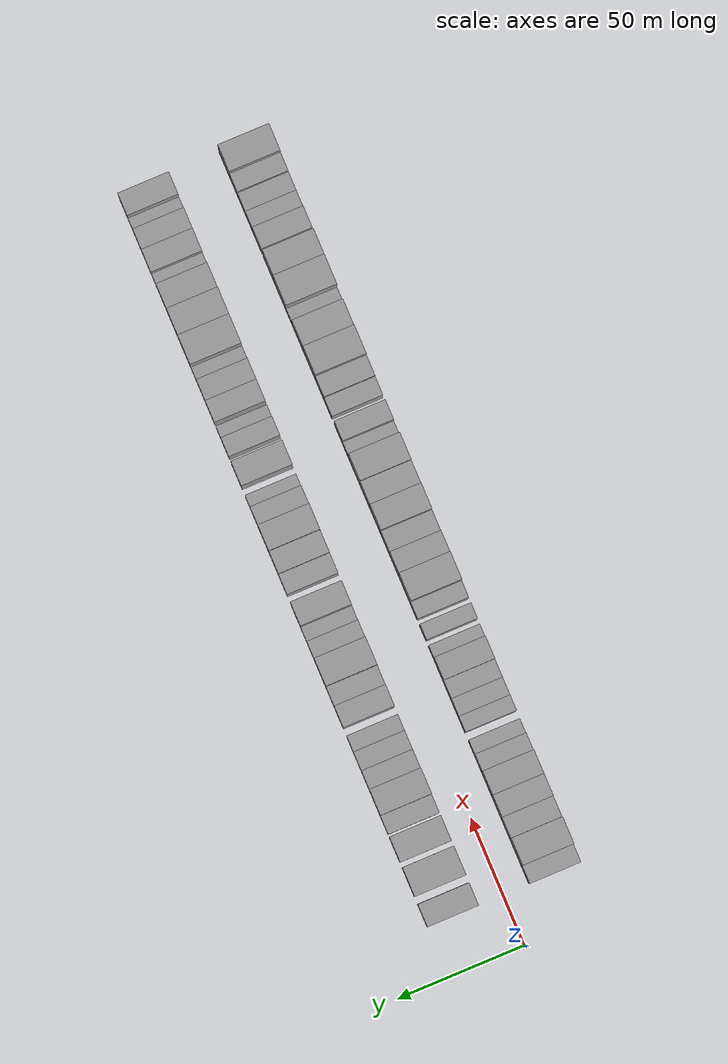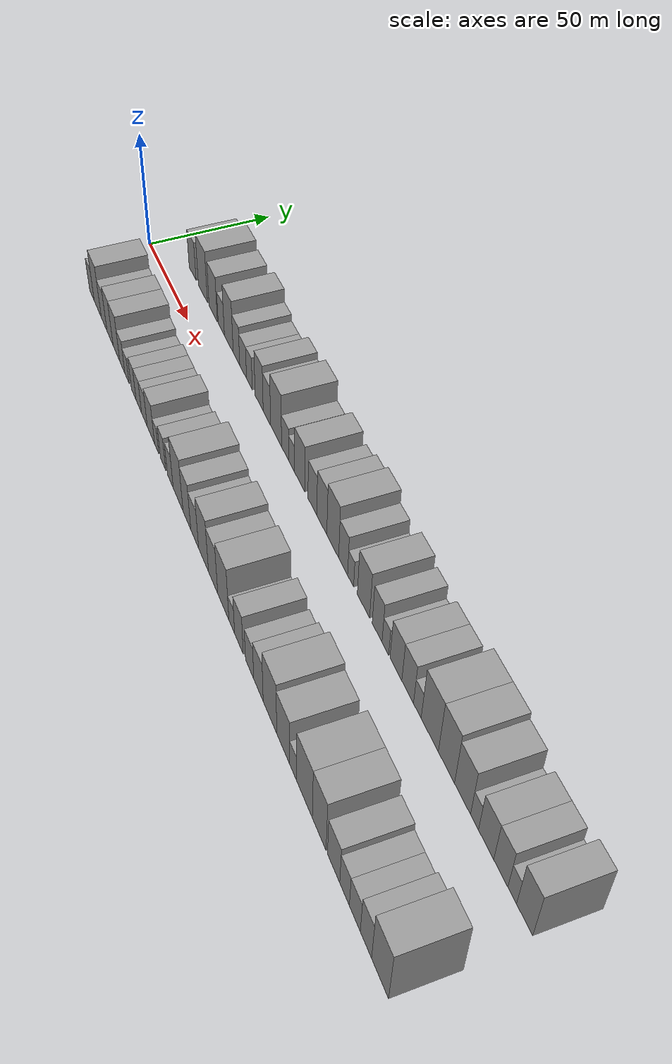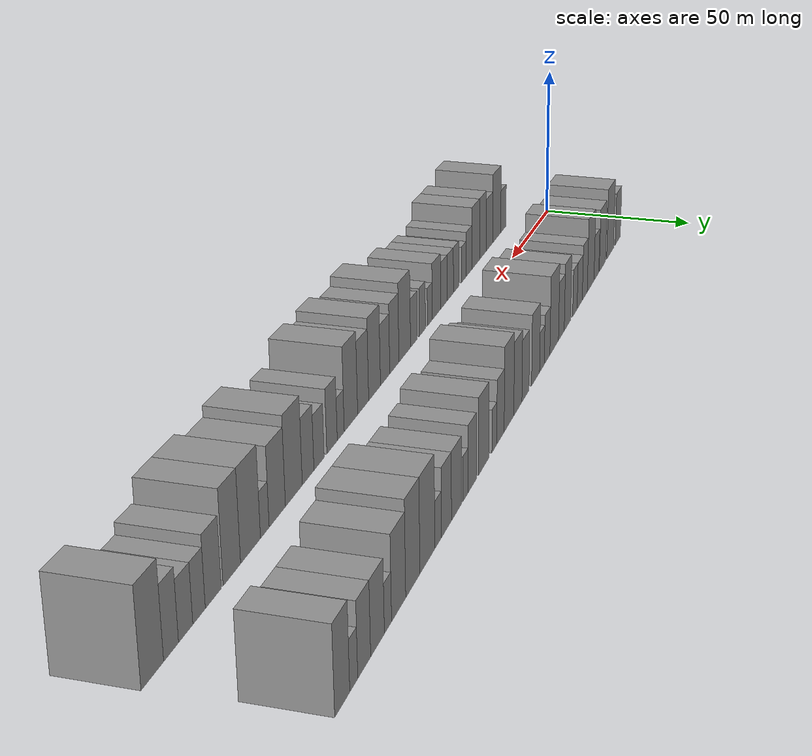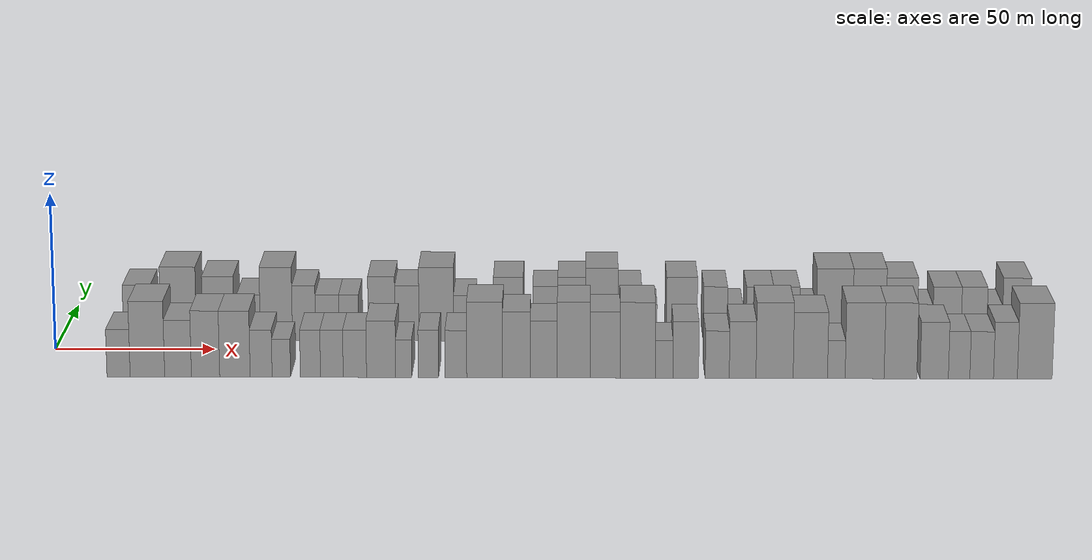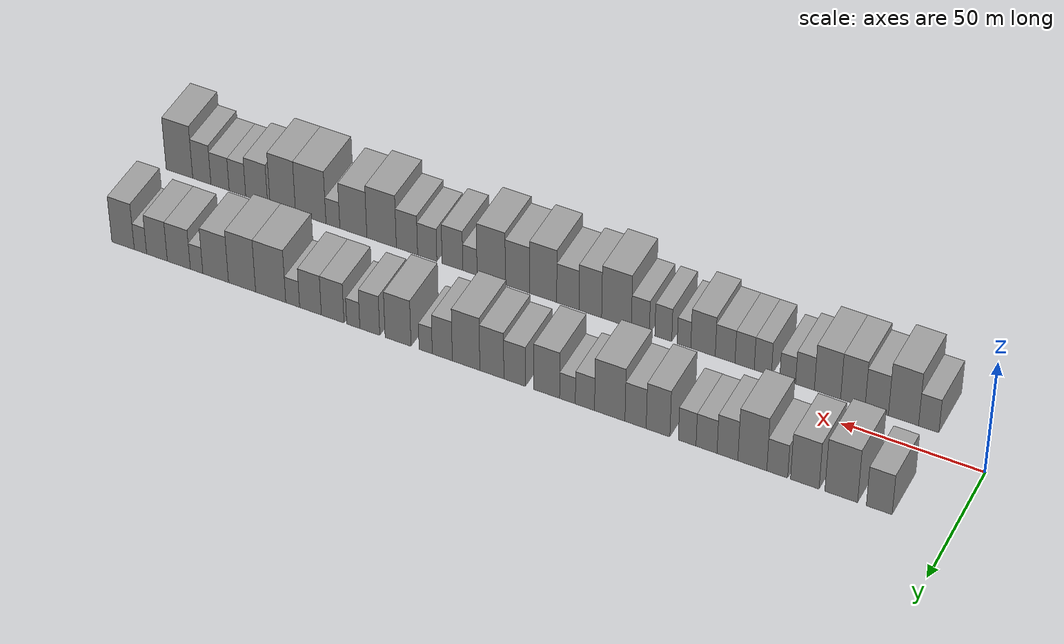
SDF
<sdf version="1.6">
 <world name="default">
  <scene>
   <sky><clouds><speed>12</speed></clouds></sky>
   <ambient>0.4 0.4 0.4 1</ambient>
   <background>0.7 0.7 0.7 1</background>
   <shadows>1</shadows>
  </scene>
  <gravity>0 0 -9.8066</gravity>
  <magnetic_field>6e-06 2.3e-05 -4.2e-05</magnetic_field>
  <physics default="0" name="default_physics" type="ode">
   <ode>
    <solver>
     <type>quick</type>
     <iters>10</iters>
     <sor>1.0</sor>
     <use_dynamic_moi_rescaling>0</use_dynamic_moi_rescaling>
    </solver>
    <constraints>
     <cfm>0</cfm>
     <erp>0.2</erp>
     <contact_max_correcting_vel>100</contact_max_correcting_vel>
     <contact_surface_layer>0.001</contact_surface_layer>
    </constraints>
   </ode>
   <max_step_size>0.004</max_step_size>
   <real_time_factor>1</real_time_factor>
   <real_time_update_rate>250</real_time_update_rate>
  </physics>
  <light name="sun" type="directional">
   <pose>0 0 10 0 0 0</pose>
   <diffuse>0.8 0.8 0.8 1</diffuse>
   <specular>0.2 0.2 0.2 1</specular>
   <attenuation>
    <range>1000</range>
    <constant>0.9</constant>
    <linear>0.01</linear>
    <quadratic>0.001</quadratic>
   </attenuation>
   <direction>-0.5 0.1 -0.9</direction>
  </light>
  <model name="building_1">
   <static>1</static>
   <pose>24.4231 20.0000 0 0.000000 0.000000 1.570796</pose>
   <link name="link">
    <pose>0 0 9.00 0 0 0</pose>
    <collision name="collision"><geometry><box><size>20.0000 8.8463 18.0000</size></box></geometry></collision>
    <visual name="visual">
     <cast_shadows>0</cast_shadows>
     <geometry><box><size>20.0000 8.8463 18.0000</size></box></geometry>
     <material>
      <script>
       <uri>model://grey_wall/materials/scripts</uri>
       <uri>model://grey_wall/materials/textures</uri>
       <name>vrc/grey_wall</name>
      </script>
     </material>
    </visual>
   </link>
  </model>
  <model name="building_2">
   <static>1</static>
   <pose>37.5085 20.0000 0 0.000000 0.000000 1.570796</pose>
   <link name="link">
    <pose>0 0 12.00 0 0 0</pose>
    <collision name="collision"><geometry><box><size>20.0000 11.3244 24.0000</size></box></geometry></collision>
    <visual name="visual">
     <cast_shadows>0</cast_shadows>
     <geometry><box><size>20.0000 11.3244 24.0000</size></box></geometry>
     <material>
      <script>
       <uri>model://grey_wall/materials/scripts</uri>
       <uri>model://grey_wall/materials/textures</uri>
       <name>vrc/grey_wall</name>
      </script>
     </material>
    </visual>
   </link>
  </model>
  <model name="building_3">
   <static>1</static>
   <pose>50.1353 20.0000 0 0.000000 0.000000 1.570796</pose>
   <link name="link">
    <pose>0 0 10.50 0 0 0</pose>
    <collision name="collision"><geometry><box><size>20.0000 9.9292 21.0000</size></box></geometry></collision>
    <visual name="visual">
     <cast_shadows>0</cast_shadows>
     <geometry><box><size>20.0000 9.9292 21.0000</size></box></geometry>
     <material>
      <script>
       <uri>model://grey_wall/materials/scripts</uri>
       <uri>model://grey_wall/materials/textures</uri>
       <name>vrc/grey_wall</name>
      </script>
     </material>
    </visual>
   </link>
  </model>
  <model name="building_4">
   <static>1</static>
   <pose>59.7442 20.0000 0 0.000000 0.000000 1.570796</pose>
   <link name="link">
    <pose>0 0 7.50 0 0 0</pose>
    <collision name="collision"><geometry><box><size>20.0000 7.2885 15.0000</size></box></geometry></collision>
    <visual name="visual">
     <cast_shadows>0</cast_shadows>
     <geometry><box><size>20.0000 7.2885 15.0000</size></box></geometry>
     <material>
      <script>
       <uri>model://grey_wall/materials/scripts</uri>
       <uri>model://grey_wall/materials/textures</uri>
       <name>vrc/grey_wall</name>
      </script>
     </material>
    </visual>
   </link>
  </model>
  <model name="building_5">
   <static>1</static>
   <pose>68.4696 20.0000 0 0.000000 0.000000 1.570796</pose>
   <link name="link">
    <pose>0 0 12.00 0 0 0</pose>
    <collision name="collision"><geometry><box><size>20.0000 10.1623 24.0000</size></box></geometry></collision>
    <visual name="visual">
     <cast_shadows>0</cast_shadows>
     <geometry><box><size>20.0000 10.1623 24.0000</size></box></geometry>
     <material>
      <script>
       <uri>model://grey_wall/materials/scripts</uri>
       <uri>model://grey_wall/materials/textures</uri>
       <name>vrc/grey_wall</name>
      </script>
     </material>
    </visual>
   </link>
  </model>
  <model name="building_6">
   <static>1</static>
   <pose>77.2258 20.0000 0 0.000000 0.000000 1.570796</pose>
   <link name="link">
    <pose>0 0 9.00 0 0 0</pose>
    <collision name="collision"><geometry><box><size>20.0000 7.3500 18.0000</size></box></geometry></collision>
    <visual name="visual">
     <cast_shadows>0</cast_shadows>
     <geometry><box><size>20.0000 7.3500 18.0000</size></box></geometry>
     <material>
      <script>
       <uri>model://grey_wall/materials/scripts</uri>
       <uri>model://grey_wall/materials/textures</uri>
       <name>vrc/grey_wall</name>
      </script>
     </material>
    </visual>
   </link>
  </model>
  <model name="building_7">
   <static>1</static>
   <pose>84.6140 20.0000 0 0.000000 0.000000 1.570796</pose>
   <link name="link">
    <pose>0 0 7.50 0 0 0</pose>
    <collision name="collision"><geometry><box><size>20.0000 7.4266 15.0000</size></box></geometry></collision>
    <visual name="visual">
     <cast_shadows>0</cast_shadows>
     <geometry><box><size>20.0000 7.4266 15.0000</size></box></geometry>
     <material>
      <script>
       <uri>model://grey_wall/materials/scripts</uri>
       <uri>model://grey_wall/materials/textures</uri>
       <name>vrc/grey_wall</name>
      </script>
     </material>
    </visual>
   </link>
  </model>
  <model name="building_8">
   <static>1</static>
   <pose>91.4693 20.0000 0 0.000000 0.000000 1.570796</pose>
   <link name="link">
    <pose>0 0 7.50 0 0 0</pose>
    <collision name="collision"><geometry><box><size>20.0000 6.2839 15.0000</size></box></geometry></collision>
    <visual name="visual">
     <cast_shadows>0</cast_shadows>
     <geometry><box><size>20.0000 6.2839 15.0000</size></box></geometry>
     <material>
      <script>
       <uri>model://grey_wall/materials/scripts</uri>
       <uri>model://grey_wall/materials/textures</uri>
       <name>vrc/grey_wall</name>
      </script>
     </material>
    </visual>
   </link>
  </model>
  <model name="building_9">
   <static>1</static>
   <pose>101.8433 20.0000 0 0.000000 0.000000 1.570796</pose>
   <link name="link">
    <pose>0 0 10.50 0 0 0</pose>
    <collision name="collision"><geometry><box><size>20.0000 8.4641 21.0000</size></box></geometry></collision>
    <visual name="visual">
     <cast_shadows>0</cast_shadows>
     <geometry><box><size>20.0000 8.4641 21.0000</size></box></geometry>
     <material>
      <script>
       <uri>model://grey_wall/materials/scripts</uri>
       <uri>model://grey_wall/materials/textures</uri>
       <name>vrc/grey_wall</name>
      </script>
     </material>
    </visual>
   </link>
  </model>
  <model name="building_10">
   <static>1</static>
   <pose>109.8797 20.0000 0 0.000000 0.000000 1.570796</pose>
   <link name="link">
    <pose>0 0 9.00 0 0 0</pose>
    <collision name="collision"><geometry><box><size>20.0000 7.6086 18.0000</size></box></geometry></collision>
    <visual name="visual">
     <cast_shadows>0</cast_shadows>
     <geometry><box><size>20.0000 7.6086 18.0000</size></box></geometry>
     <material>
      <script>
       <uri>model://grey_wall/materials/scripts</uri>
       <uri>model://grey_wall/materials/textures</uri>
       <name>vrc/grey_wall</name>
      </script>
     </material>
    </visual>
   </link>
  </model>
  <model name="building_11">
   <static>1</static>
   <pose>119.1592 20.0000 0 0.000000 0.000000 1.570796</pose>
   <link name="link">
    <pose>0 0 12.00 0 0 0</pose>
    <collision name="collision"><geometry><box><size>20.0000 10.9503 24.0000</size></box></geometry></collision>
    <visual name="visual">
     <cast_shadows>0</cast_shadows>
     <geometry><box><size>20.0000 10.9503 24.0000</size></box></geometry>
     <material>
      <script>
       <uri>model://grey_wall/materials/scripts</uri>
       <uri>model://grey_wall/materials/textures</uri>
       <name>vrc/grey_wall</name>
      </script>
     </material>
    </visual>
   </link>
  </model>
  <model name="building_12">
   <static>1</static>
   <pose>128.1059 20.0000 0 0.000000 0.000000 1.570796</pose>
   <link name="link">
    <pose>0 0 7.50 0 0 0</pose>
    <collision name="collision"><geometry><box><size>20.0000 6.9432 15.0000</size></box></geometry></collision>
    <visual name="visual">
     <cast_shadows>0</cast_shadows>
     <geometry><box><size>20.0000 6.9432 15.0000</size></box></geometry>
     <material>
      <script>
       <uri>model://grey_wall/materials/scripts</uri>
       <uri>model://grey_wall/materials/textures</uri>
       <name>vrc/grey_wall</name>
      </script>
     </material>
    </visual>
   </link>
  </model>
  <model name="building_13">
   <static>1</static>
   <pose>134.4381 20.0000 0 0.000000 0.000000 1.570796</pose>
   <link name="link">
    <pose>0 0 6.00 0 0 0</pose>
    <collision name="collision"><geometry><box><size>20.0000 5.7212 12.0000</size></box></geometry></collision>
    <visual name="visual">
     <cast_shadows>0</cast_shadows>
     <geometry><box><size>20.0000 5.7212 12.0000</size></box></geometry>
     <material>
      <script>
       <uri>model://grey_wall/materials/scripts</uri>
       <uri>model://grey_wall/materials/textures</uri>
       <name>vrc/grey_wall</name>
      </script>
     </material>
    </visual>
   </link>
  </model>
  <model name="building_14">
   <static>1</static>
   <pose>142.0085 20.0000 0 0.000000 0.000000 1.570796</pose>
   <link name="link">
    <pose>0 0 10.50 0 0 0</pose>
    <collision name="collision"><geometry><box><size>20.0000 9.4196 21.0000</size></box></geometry></collision>
    <visual name="visual">
     <cast_shadows>0</cast_shadows>
     <geometry><box><size>20.0000 9.4196 21.0000</size></box></geometry>
     <material>
      <script>
       <uri>model://grey_wall/materials/scripts</uri>
       <uri>model://grey_wall/materials/textures</uri>
       <name>vrc/grey_wall</name>
      </script>
     </material>
    </visual>
   </link>
  </model>
  <model name="building_15">
   <static>1</static>
   <pose>153.6885 20.0000 0 0.000000 0.000000 1.570796</pose>
   <link name="link">
    <pose>0 0 9.00 0 0 0</pose>
    <collision name="collision"><geometry><box><size>20.0000 7.9404 18.0000</size></box></geometry></collision>
    <visual name="visual">
     <cast_shadows>0</cast_shadows>
     <geometry><box><size>20.0000 7.9404 18.0000</size></box></geometry>
     <material>
      <script>
       <uri>model://grey_wall/materials/scripts</uri>
       <uri>model://grey_wall/materials/textures</uri>
       <name>vrc/grey_wall</name>
      </script>
     </material>
    </visual>
   </link>
  </model>
  <model name="building_16">
   <static>1</static>
   <pose>162.0779 20.0000 0 0.000000 0.000000 1.570796</pose>
   <link name="link">
    <pose>0 0 10.50 0 0 0</pose>
    <collision name="collision"><geometry><box><size>20.0000 8.8384 21.0000</size></box></geometry></collision>
    <visual name="visual">
     <cast_shadows>0</cast_shadows>
     <geometry><box><size>20.0000 8.8384 21.0000</size></box></geometry>
     <material>
      <script>
       <uri>model://grey_wall/materials/scripts</uri>
       <uri>model://grey_wall/materials/textures</uri>
       <name>vrc/grey_wall</name>
      </script>
     </material>
    </visual>
   </link>
  </model>
  <model name="building_17">
   <static>1</static>
   <pose>171.5769 20.0000 0 0.000000 0.000000 1.570796</pose>
   <link name="link">
    <pose>0 0 12.00 0 0 0</pose>
    <collision name="collision"><geometry><box><size>20.0000 10.1597 24.0000</size></box></geometry></collision>
    <visual name="visual">
     <cast_shadows>0</cast_shadows>
     <geometry><box><size>20.0000 10.1597 24.0000</size></box></geometry>
     <material>
      <script>
       <uri>model://grey_wall/materials/scripts</uri>
       <uri>model://grey_wall/materials/textures</uri>
       <name>vrc/grey_wall</name>
      </script>
     </material>
    </visual>
   </link>
  </model>
  <model name="building_18">
   <static>1</static>
   <pose>180.3827 20.0000 0 0.000000 0.000000 1.570796</pose>
   <link name="link">
    <pose>0 0 9.00 0 0 0</pose>
    <collision name="collision"><geometry><box><size>20.0000 7.4519 18.0000</size></box></geometry></collision>
    <visual name="visual">
     <cast_shadows>0</cast_shadows>
     <geometry><box><size>20.0000 7.4519 18.0000</size></box></geometry>
     <material>
      <script>
       <uri>model://grey_wall/materials/scripts</uri>
       <uri>model://grey_wall/materials/textures</uri>
       <name>vrc/grey_wall</name>
      </script>
     </material>
    </visual>
   </link>
  </model>
  <model name="building_19">
   <static>1</static>
   <pose>186.5635 20.0000 0 0.000000 0.000000 1.570796</pose>
   <link name="link">
    <pose>0 0 6.00 0 0 0</pose>
    <collision name="collision"><geometry><box><size>20.0000 4.9098 12.0000</size></box></geometry></collision>
    <visual name="visual">
     <cast_shadows>0</cast_shadows>
     <geometry><box><size>20.0000 4.9098 12.0000</size></box></geometry>
     <material>
      <script>
       <uri>model://grey_wall/materials/scripts</uri>
       <uri>model://grey_wall/materials/textures</uri>
       <name>vrc/grey_wall</name>
      </script>
     </material>
    </visual>
   </link>
  </model>
  <model name="building_20">
   <static>1</static>
   <pose>196.8734 20.0000 0 0.000000 0.000000 1.570796</pose>
   <link name="link">
    <pose>0 0 10.50 0 0 0</pose>
    <collision name="collision"><geometry><box><size>20.0000 9.7098 21.0000</size></box></geometry></collision>
    <visual name="visual">
     <cast_shadows>0</cast_shadows>
     <geometry><box><size>20.0000 9.7098 21.0000</size></box></geometry>
     <material>
      <script>
       <uri>model://grey_wall/materials/scripts</uri>
       <uri>model://grey_wall/materials/textures</uri>
       <name>vrc/grey_wall</name>
      </script>
     </material>
    </visual>
   </link>
  </model>
  <model name="building_21">
   <static>1</static>
   <pose>207.4792 20.0000 0 0.000000 0.000000 1.570796</pose>
   <link name="link">
    <pose>0 0 9.00 0 0 0</pose>
    <collision name="collision"><geometry><box><size>20.0000 7.5019 18.0000</size></box></geometry></collision>
    <visual name="visual">
     <cast_shadows>0</cast_shadows>
     <geometry><box><size>20.0000 7.5019 18.0000</size></box></geometry>
     <material>
      <script>
       <uri>model://grey_wall/materials/scripts</uri>
       <uri>model://grey_wall/materials/textures</uri>
       <name>vrc/grey_wall</name>
      </script>
     </material>
    </visual>
   </link>
  </model>
  <model name="building_22">
   <static>1</static>
   <pose>213.7127 20.0000 0 0.000000 0.000000 1.570796</pose>
   <link name="link">
    <pose>0 0 6.00 0 0 0</pose>
    <collision name="collision"><geometry><box><size>20.0000 4.9652 12.0000</size></box></geometry></collision>
    <visual name="visual">
     <cast_shadows>0</cast_shadows>
     <geometry><box><size>20.0000 4.9652 12.0000</size></box></geometry>
     <material>
      <script>
       <uri>model://grey_wall/materials/scripts</uri>
       <uri>model://grey_wall/materials/textures</uri>
       <name>vrc/grey_wall</name>
      </script>
     </material>
    </visual>
   </link>
  </model>
  <model name="building_23">
   <static>1</static>
   <pose>221.4947 20.0000 0 0.000000 0.000000 1.570796</pose>
   <link name="link">
    <pose>0 0 9.00 0 0 0</pose>
    <collision name="collision"><geometry><box><size>20.0000 8.5988 18.0000</size></box></geometry></collision>
    <visual name="visual">
     <cast_shadows>0</cast_shadows>
     <geometry><box><size>20.0000 8.5988 18.0000</size></box></geometry>
     <material>
      <script>
       <uri>model://grey_wall/materials/scripts</uri>
       <uri>model://grey_wall/materials/textures</uri>
       <name>vrc/grey_wall</name>
      </script>
     </material>
    </visual>
   </link>
  </model>
  <model name="building_24">
   <static>1</static>
   <pose>229.9302 20.0000 0 0.000000 0.000000 1.570796</pose>
   <link name="link">
    <pose>0 0 9.00 0 0 0</pose>
    <collision name="collision"><geometry><box><size>20.0000 8.2722 18.0000</size></box></geometry></collision>
    <visual name="visual">
     <cast_shadows>0</cast_shadows>
     <geometry><box><size>20.0000 8.2722 18.0000</size></box></geometry>
     <material>
      <script>
       <uri>model://grey_wall/materials/scripts</uri>
       <uri>model://grey_wall/materials/textures</uri>
       <name>vrc/grey_wall</name>
      </script>
     </material>
    </visual>
   </link>
  </model>
  <model name="building_25">
   <static>1</static>
   <pose>236.7122 20.0000 0 0.000000 0.000000 1.570796</pose>
   <link name="link">
    <pose>0 0 6.00 0 0 0</pose>
    <collision name="collision"><geometry><box><size>20.0000 5.2917 12.0000</size></box></geometry></collision>
    <visual name="visual">
     <cast_shadows>0</cast_shadows>
     <geometry><box><size>20.0000 5.2917 12.0000</size></box></geometry>
     <material>
      <script>
       <uri>model://grey_wall/materials/scripts</uri>
       <uri>model://grey_wall/materials/textures</uri>
       <name>vrc/grey_wall</name>
      </script>
     </material>
    </visual>
   </link>
  </model>
  <model name="building_26">
   <static>1</static>
   <pose>245.1382 20.0000 0 0.000000 0.000000 1.570796</pose>
   <link name="link">
    <pose>0 0 12.00 0 0 0</pose>
    <collision name="collision"><geometry><box><size>20.0000 11.5604 24.0000</size></box></geometry></collision>
    <visual name="visual">
     <cast_shadows>0</cast_shadows>
     <geometry><box><size>20.0000 11.5604 24.0000</size></box></geometry>
     <material>
      <script>
       <uri>model://grey_wall/materials/scripts</uri>
       <uri>model://grey_wall/materials/textures</uri>
       <name>vrc/grey_wall</name>
      </script>
     </material>
    </visual>
   </link>
  </model>
  <model name="building_27">
   <static>1</static>
   <pose>256.1483 20.0000 0 0.000000 0.000000 1.570796</pose>
   <link name="link">
    <pose>0 0 12.00 0 0 0</pose>
    <collision name="collision"><geometry><box><size>20.0000 10.4598 24.0000</size></box></geometry></collision>
    <visual name="visual">
     <cast_shadows>0</cast_shadows>
     <geometry><box><size>20.0000 10.4598 24.0000</size></box></geometry>
     <material>
      <script>
       <uri>model://grey_wall/materials/scripts</uri>
       <uri>model://grey_wall/materials/textures</uri>
       <name>vrc/grey_wall</name>
      </script>
     </material>
    </visual>
   </link>
  </model>
  <model name="building_28">
   <static>1</static>
   <pose>266.3524 20.0000 0 0.000000 0.000000 1.570796</pose>
   <link name="link">
    <pose>0 0 10.50 0 0 0</pose>
    <collision name="collision"><geometry><box><size>20.0000 9.9483 21.0000</size></box></geometry></collision>
    <visual name="visual">
     <cast_shadows>0</cast_shadows>
     <geometry><box><size>20.0000 9.9483 21.0000</size></box></geometry>
     <material>
      <script>
       <uri>model://grey_wall/materials/scripts</uri>
       <uri>model://grey_wall/materials/textures</uri>
       <name>vrc/grey_wall</name>
      </script>
     </material>
    </visual>
   </link>
  </model>
  <model name="building_29">
   <static>1</static>
   <pose>273.7515 20.0000 0 0.000000 0.000000 1.570796</pose>
   <link name="link">
    <pose>0 0 6.00 0 0 0</pose>
    <collision name="collision"><geometry><box><size>20.0000 4.8498 12.0000</size></box></geometry></collision>
    <visual name="visual">
     <cast_shadows>0</cast_shadows>
     <geometry><box><size>20.0000 4.8498 12.0000</size></box></geometry>
     <material>
      <script>
       <uri>model://grey_wall/materials/scripts</uri>
       <uri>model://grey_wall/materials/textures</uri>
       <name>vrc/grey_wall</name>
      </script>
     </material>
    </visual>
   </link>
  </model>
  <model name="building_30">
   <static>1</static>
   <pose>280.6696 20.0000 0 0.000000 0.000000 1.570796</pose>
   <link name="link">
    <pose>0 0 9.00 0 0 0</pose>
    <collision name="collision"><geometry><box><size>20.0000 8.9865 18.0000</size></box></geometry></collision>
    <visual name="visual">
     <cast_shadows>0</cast_shadows>
     <geometry><box><size>20.0000 8.9865 18.0000</size></box></geometry>
     <material>
      <script>
       <uri>model://grey_wall/materials/scripts</uri>
       <uri>model://grey_wall/materials/textures</uri>
       <name>vrc/grey_wall</name>
      </script>
     </material>
    </visual>
   </link>
  </model>
  <model name="building_31">
   <static>1</static>
   <pose>289.2154 20.0000 0 0.000000 0.000000 1.570796</pose>
   <link name="link">
    <pose>0 0 9.00 0 0 0</pose>
    <collision name="collision"><geometry><box><size>20.0000 8.1050 18.0000</size></box></geometry></collision>
    <visual name="visual">
     <cast_shadows>0</cast_shadows>
     <geometry><box><size>20.0000 8.1050 18.0000</size></box></geometry>
     <material>
      <script>
       <uri>model://grey_wall/materials/scripts</uri>
       <uri>model://grey_wall/materials/textures</uri>
       <name>vrc/grey_wall</name>
      </script>
     </material>
    </visual>
   </link>
  </model>
  <model name="building_32">
   <static>1</static>
   <pose>295.6889 20.0000 0 0.000000 0.000000 1.570796</pose>
   <link name="link">
    <pose>0 0 6.00 0 0 0</pose>
    <collision name="collision"><geometry><box><size>20.0000 4.8420 12.0000</size></box></geometry></collision>
    <visual name="visual">
     <cast_shadows>0</cast_shadows>
     <geometry><box><size>20.0000 4.8420 12.0000</size></box></geometry>
     <material>
      <script>
       <uri>model://grey_wall/materials/scripts</uri>
       <uri>model://grey_wall/materials/textures</uri>
       <name>vrc/grey_wall</name>
      </script>
     </material>
    </visual>
   </link>
  </model>
  <model name="building_33">
   <static>1</static>
   <pose>302.5286 20.0000 0 0.000000 0.000000 1.570796</pose>
   <link name="link">
    <pose>0 0 10.50 0 0 0</pose>
    <collision name="collision"><geometry><box><size>20.0000 8.8374 21.0000</size></box></geometry></collision>
    <visual name="visual">
     <cast_shadows>0</cast_shadows>
     <geometry><box><size>20.0000 8.8374 21.0000</size></box></geometry>
     <material>
      <script>
       <uri>model://grey_wall/materials/scripts</uri>
       <uri>model://grey_wall/materials/textures</uri>
       <name>vrc/grey_wall</name>
      </script>
     </material>
    </visual>
   </link>
  </model>
  <model name="building_34">
   <static>1</static>
   <pose>23.5488 -20.0000 0 0.000000 0.000000 1.570796</pose>
   <link name="link">
    <pose>0 0 7.50 0 0 0</pose>
    <collision name="collision"><geometry><box><size>20.0000 7.0976 15.0000</size></box></geometry></collision>
    <visual name="visual">
     <cast_shadows>0</cast_shadows>
     <geometry><box><size>20.0000 7.0976 15.0000</size></box></geometry>
     <material>
      <script>
       <uri>model://grey_wall/materials/scripts</uri>
       <uri>model://grey_wall/materials/textures</uri>
       <name>vrc/grey_wall</name>
      </script>
     </material>
    </visual>
   </link>
  </model>
  <model name="building_35">
   <static>1</static>
   <pose>32.3856 -20.0000 0 0.000000 0.000000 1.570796</pose>
   <link name="link">
    <pose>0 0 12.00 0 0 0</pose>
    <collision name="collision"><geometry><box><size>20.0000 10.5759 24.0000</size></box></geometry></collision>
    <visual name="visual">
     <cast_shadows>0</cast_shadows>
     <geometry><box><size>20.0000 10.5759 24.0000</size></box></geometry>
     <material>
      <script>
       <uri>model://grey_wall/materials/scripts</uri>
       <uri>model://grey_wall/materials/textures</uri>
       <name>vrc/grey_wall</name>
      </script>
     </material>
    </visual>
   </link>
  </model>
  <model name="building_36">
   <static>1</static>
   <pose>41.7662 -20.0000 0 0.000000 0.000000 1.570796</pose>
   <link name="link">
    <pose>0 0 9.00 0 0 0</pose>
    <collision name="collision"><geometry><box><size>20.0000 8.1854 18.0000</size></box></geometry></collision>
    <visual name="visual">
     <cast_shadows>0</cast_shadows>
     <geometry><box><size>20.0000 8.1854 18.0000</size></box></geometry>
     <material>
      <script>
       <uri>model://grey_wall/materials/scripts</uri>
       <uri>model://grey_wall/materials/textures</uri>
       <name>vrc/grey_wall</name>
      </script>
     </material>
    </visual>
   </link>
  </model>
  <model name="building_37">
   <static>1</static>
   <pose>50.1819 -20.0000 0 0.000000 0.000000 1.570796</pose>
   <link name="link">
    <pose>0 0 10.50 0 0 0</pose>
    <collision name="collision"><geometry><box><size>20.0000 8.6461 21.0000</size></box></geometry></collision>
    <visual name="visual">
     <cast_shadows>0</cast_shadows>
     <geometry><box><size>20.0000 8.6461 21.0000</size></box></geometry>
     <material>
      <script>
       <uri>model://grey_wall/materials/scripts</uri>
       <uri>model://grey_wall/materials/textures</uri>
       <name>vrc/grey_wall</name>
      </script>
     </material>
    </visual>
   </link>
  </model>
  <model name="building_38">
   <static>1</static>
   <pose>59.1694 -20.0000 0 0.000000 0.000000 1.570796</pose>
   <link name="link">
    <pose>0 0 10.50 0 0 0</pose>
    <collision name="collision"><geometry><box><size>20.0000 9.3289 21.0000</size></box></geometry></collision>
    <visual name="visual">
     <cast_shadows>0</cast_shadows>
     <geometry><box><size>20.0000 9.3289 21.0000</size></box></geometry>
     <material>
      <script>
       <uri>model://grey_wall/materials/scripts</uri>
       <uri>model://grey_wall/materials/textures</uri>
       <name>vrc/grey_wall</name>
      </script>
     </material>
    </visual>
   </link>
  </model>
  <model name="building_39">
   <static>1</static>
   <pose>67.1872 -20.0000 0 0.000000 0.000000 1.570796</pose>
   <link name="link">
    <pose>0 0 7.50 0 0 0</pose>
    <collision name="collision"><geometry><box><size>20.0000 6.7068 15.0000</size></box></geometry></collision>
    <visual name="visual">
     <cast_shadows>0</cast_shadows>
     <geometry><box><size>20.0000 6.7068 15.0000</size></box></geometry>
     <material>
      <script>
       <uri>model://grey_wall/materials/scripts</uri>
       <uri>model://grey_wall/materials/textures</uri>
       <name>vrc/grey_wall</name>
      </script>
     </material>
    </visual>
   </link>
  </model>
  <model name="building_40">
   <static>1</static>
   <pose>73.3599 -20.0000 0 0.000000 0.000000 1.570796</pose>
   <link name="link">
    <pose>0 0 6.00 0 0 0</pose>
    <collision name="collision"><geometry><box><size>20.0000 5.6386 12.0000</size></box></geometry></collision>
    <visual name="visual">
     <cast_shadows>0</cast_shadows>
     <geometry><box><size>20.0000 5.6386 12.0000</size></box></geometry>
     <material>
      <script>
       <uri>model://grey_wall/materials/scripts</uri>
       <uri>model://grey_wall/materials/textures</uri>
       <name>vrc/grey_wall</name>
      </script>
     </material>
    </visual>
   </link>
  </model>
  <model name="building_41">
   <static>1</static>
   <pose>82.2640 -20.0000 0 0.000000 0.000000 1.570796</pose>
   <link name="link">
    <pose>0 0 7.50 0 0 0</pose>
    <collision name="collision"><geometry><box><size>20.0000 6.1696 15.0000</size></box></geometry></collision>
    <visual name="visual">
     <cast_shadows>0</cast_shadows>
     <geometry><box><size>20.0000 6.1696 15.0000</size></box></geometry>
     <material>
      <script>
       <uri>model://grey_wall/materials/scripts</uri>
       <uri>model://grey_wall/materials/textures</uri>
       <name>vrc/grey_wall</name>
      </script>
     </material>
    </visual>
   </link>
  </model>
  <model name="building_42">
   <static>1</static>
   <pose>88.8178 -20.0000 0 0.000000 0.000000 1.570796</pose>
   <link name="link">
    <pose>0 0 7.50 0 0 0</pose>
    <collision name="collision"><geometry><box><size>20.0000 6.9380 15.0000</size></box></geometry></collision>
    <visual name="visual">
     <cast_shadows>0</cast_shadows>
     <geometry><box><size>20.0000 6.9380 15.0000</size></box></geometry>
     <material>
      <script>
       <uri>model://grey_wall/materials/scripts</uri>
       <uri>model://grey_wall/materials/textures</uri>
       <name>vrc/grey_wall</name>
      </script>
     </material>
    </visual>
   </link>
  </model>
  <model name="building_43">
   <static>1</static>
   <pose>95.8531 -20.0000 0 0.000000 0.000000 1.570796</pose>
   <link name="link">
    <pose>0 0 7.50 0 0 0</pose>
    <collision name="collision"><geometry><box><size>20.0000 7.1326 15.0000</size></box></geometry></collision>
    <visual name="visual">
     <cast_shadows>0</cast_shadows>
     <geometry><box><size>20.0000 7.1326 15.0000</size></box></geometry>
     <material>
      <script>
       <uri>model://grey_wall/materials/scripts</uri>
       <uri>model://grey_wall/materials/textures</uri>
       <name>vrc/grey_wall</name>
      </script>
     </material>
    </visual>
   </link>
  </model>
  <model name="building_44">
   <static>1</static>
   <pose>103.8704 -20.0000 0 0.000000 0.000000 1.570796</pose>
   <link name="link">
    <pose>0 0 9.00 0 0 0</pose>
    <collision name="collision"><geometry><box><size>20.0000 8.9021 18.0000</size></box></geometry></collision>
    <visual name="visual">
     <cast_shadows>0</cast_shadows>
     <geometry><box><size>20.0000 8.9021 18.0000</size></box></geometry>
     <material>
      <script>
       <uri>model://grey_wall/materials/scripts</uri>
       <uri>model://grey_wall/materials/textures</uri>
       <name>vrc/grey_wall</name>
      </script>
     </material>
    </visual>
   </link>
  </model>
  <model name="building_45">
   <static>1</static>
   <pose>110.7804 -20.0000 0 0.000000 0.000000 1.570796</pose>
   <link name="link">
    <pose>0 0 6.00 0 0 0</pose>
    <collision name="collision"><geometry><box><size>20.0000 4.9178 12.0000</size></box></geometry></collision>
    <visual name="visual">
     <cast_shadows>0</cast_shadows>
     <geometry><box><size>20.0000 4.9178 12.0000</size></box></geometry>
     <material>
      <script>
       <uri>model://grey_wall/materials/scripts</uri>
       <uri>model://grey_wall/materials/textures</uri>
       <name>vrc/grey_wall</name>
      </script>
     </material>
    </visual>
   </link>
  </model>
  <model name="building_46">
   <static>1</static>
   <pose>118.3358 -20.0000 0 0.000000 0.000000 1.570796</pose>
   <link name="link">
    <pose>0 0 7.50 0 0 0</pose>
    <collision name="collision"><geometry><box><size>20.0000 6.1930 15.0000</size></box></geometry></collision>
    <visual name="visual">
     <cast_shadows>0</cast_shadows>
     <geometry><box><size>20.0000 6.1930 15.0000</size></box></geometry>
     <material>
      <script>
       <uri>model://grey_wall/materials/scripts</uri>
       <uri>model://grey_wall/materials/textures</uri>
       <name>vrc/grey_wall</name>
      </script>
     </material>
    </visual>
   </link>
  </model>
  <model name="building_47">
   <static>1</static>
   <pose>126.7465 -20.0000 0 0.000000 0.000000 1.570796</pose>
   <link name="link">
    <pose>0 0 7.50 0 0 0</pose>
    <collision name="collision"><geometry><box><size>20.0000 6.6285 15.0000</size></box></geometry></collision>
    <visual name="visual">
     <cast_shadows>0</cast_shadows>
     <geometry><box><size>20.0000 6.6285 15.0000</size></box></geometry>
     <material>
      <script>
       <uri>model://grey_wall/materials/scripts</uri>
       <uri>model://grey_wall/materials/textures</uri>
       <name>vrc/grey_wall</name>
      </script>
     </material>
    </visual>
   </link>
  </model>
  <model name="building_48">
   <static>1</static>
   <pose>135.5321 -20.0000 0 0.000000 0.000000 1.570796</pose>
   <link name="link">
    <pose>0 0 12.00 0 0 0</pose>
    <collision name="collision"><geometry><box><size>20.0000 10.9428 24.0000</size></box></geometry></collision>
    <visual name="visual">
     <cast_shadows>0</cast_shadows>
     <geometry><box><size>20.0000 10.9428 24.0000</size></box></geometry>
     <material>
      <script>
       <uri>model://grey_wall/materials/scripts</uri>
       <uri>model://grey_wall/materials/textures</uri>
       <name>vrc/grey_wall</name>
      </script>
     </material>
    </visual>
   </link>
  </model>
  <model name="building_49">
   <static>1</static>
   <pose>145.2086 -20.0000 0 0.000000 0.000000 1.570796</pose>
   <link name="link">
    <pose>0 0 10.50 0 0 0</pose>
    <collision name="collision"><geometry><box><size>20.0000 8.4101 21.0000</size></box></geometry></collision>
    <visual name="visual">
     <cast_shadows>0</cast_shadows>
     <geometry><box><size>20.0000 8.4101 21.0000</size></box></geometry>
     <material>
      <script>
       <uri>model://grey_wall/materials/scripts</uri>
       <uri>model://grey_wall/materials/textures</uri>
       <name>vrc/grey_wall</name>
      </script>
     </material>
    </visual>
   </link>
  </model>
  <model name="building_50">
   <static>1</static>
   <pose>153.5516 -20.0000 0 0.000000 0.000000 1.570796</pose>
   <link name="link">
    <pose>0 0 9.00 0 0 0</pose>
    <collision name="collision"><geometry><box><size>20.0000 8.2760 18.0000</size></box></geometry></collision>
    <visual name="visual">
     <cast_shadows>0</cast_shadows>
     <geometry><box><size>20.0000 8.2760 18.0000</size></box></geometry>
     <material>
      <script>
       <uri>model://grey_wall/materials/scripts</uri>
       <uri>model://grey_wall/materials/textures</uri>
       <name>vrc/grey_wall</name>
      </script>
     </material>
    </visual>
   </link>
  </model>
  <model name="building_51">
   <static>1</static>
   <pose>162.7501 -20.0000 0 0.000000 0.000000 1.570796</pose>
   <link name="link">
    <pose>0 0 12.00 0 0 0</pose>
    <collision name="collision"><geometry><box><size>20.0000 10.1210 24.0000</size></box></geometry></collision>
    <visual name="visual">
     <cast_shadows>0</cast_shadows>
     <geometry><box><size>20.0000 10.1210 24.0000</size></box></geometry>
     <material>
      <script>
       <uri>model://grey_wall/materials/scripts</uri>
       <uri>model://grey_wall/materials/textures</uri>
       <name>vrc/grey_wall</name>
      </script>
     </material>
    </visual>
   </link>
  </model>
  <model name="building_52">
   <static>1</static>
   <pose>172.3680 -20.0000 0 0.000000 0.000000 1.570796</pose>
   <link name="link">
    <pose>0 0 10.50 0 0 0</pose>
    <collision name="collision"><geometry><box><size>20.0000 9.1146 21.0000</size></box></geometry></collision>
    <visual name="visual">
     <cast_shadows>0</cast_shadows>
     <geometry><box><size>20.0000 9.1146 21.0000</size></box></geometry>
     <material>
      <script>
       <uri>model://grey_wall/materials/scripts</uri>
       <uri>model://grey_wall/materials/textures</uri>
       <name>vrc/grey_wall</name>
      </script>
     </material>
    </visual>
   </link>
  </model>
  <model name="building_53">
   <static>1</static>
   <pose>182.2688 -20.0000 0 0.000000 0.000000 1.570796</pose>
   <link name="link">
    <pose>0 0 12.00 0 0 0</pose>
    <collision name="collision"><geometry><box><size>20.0000 10.6870 24.0000</size></box></geometry></collision>
    <visual name="visual">
     <cast_shadows>0</cast_shadows>
     <geometry><box><size>20.0000 10.6870 24.0000</size></box></geometry>
     <material>
      <script>
       <uri>model://grey_wall/materials/scripts</uri>
       <uri>model://grey_wall/materials/textures</uri>
       <name>vrc/grey_wall</name>
      </script>
     </material>
    </visual>
   </link>
  </model>
  <model name="building_54">
   <static>1</static>
   <pose>190.3053 -20.0000 0 0.000000 0.000000 1.570796</pose>
   <link name="link">
    <pose>0 0 6.00 0 0 0</pose>
    <collision name="collision"><geometry><box><size>20.0000 5.3861 12.0000</size></box></geometry></collision>
    <visual name="visual">
     <cast_shadows>0</cast_shadows>
     <geometry><box><size>20.0000 5.3861 12.0000</size></box></geometry>
     <material>
      <script>
       <uri>model://grey_wall/materials/scripts</uri>
       <uri>model://grey_wall/materials/textures</uri>
       <name>vrc/grey_wall</name>
      </script>
     </material>
    </visual>
   </link>
  </model>
  <model name="building_55">
   <static>1</static>
   <pose>196.9337 -20.0000 0 0.000000 0.000000 1.570796</pose>
   <link name="link">
    <pose>0 0 9.00 0 0 0</pose>
    <collision name="collision"><geometry><box><size>20.0000 7.8708 18.0000</size></box></geometry></collision>
    <visual name="visual">
     <cast_shadows>0</cast_shadows>
     <geometry><box><size>20.0000 7.8708 18.0000</size></box></geometry>
     <material>
      <script>
       <uri>model://grey_wall/materials/scripts</uri>
       <uri>model://grey_wall/materials/textures</uri>
       <name>vrc/grey_wall</name>
      </script>
     </material>
    </visual>
   </link>
  </model>
  <model name="building_56">
   <static>1</static>
   <pose>206.5464 -20.0000 0 0.000000 0.000000 1.570796</pose>
   <link name="link">
    <pose>0 0 7.50 0 0 0</pose>
    <collision name="collision"><geometry><box><size>20.0000 7.3545 15.0000</size></box></geometry></collision>
    <visual name="visual">
     <cast_shadows>0</cast_shadows>
     <geometry><box><size>20.0000 7.3545 15.0000</size></box></geometry>
     <material>
      <script>
       <uri>model://grey_wall/materials/scripts</uri>
       <uri>model://grey_wall/materials/textures</uri>
       <name>vrc/grey_wall</name>
      </script>
     </material>
    </visual>
   </link>
  </model>
  <model name="building_57">
   <static>1</static>
   <pose>214.2961 -20.0000 0 0.000000 0.000000 1.570796</pose>
   <link name="link">
    <pose>0 0 9.00 0 0 0</pose>
    <collision name="collision"><geometry><box><size>20.0000 8.1451 18.0000</size></box></geometry></collision>
    <visual name="visual">
     <cast_shadows>0</cast_shadows>
     <geometry><box><size>20.0000 8.1451 18.0000</size></box></geometry>
     <material>
      <script>
       <uri>model://grey_wall/materials/scripts</uri>
       <uri>model://grey_wall/materials/textures</uri>
       <name>vrc/grey_wall</name>
      </script>
     </material>
    </visual>
   </link>
  </model>
  <model name="building_58">
   <static>1</static>
   <pose>224.0406 -20.0000 0 0.000000 0.000000 1.570796</pose>
   <link name="link">
    <pose>0 0 12.00 0 0 0</pose>
    <collision name="collision"><geometry><box><size>20.0000 11.3439 24.0000</size></box></geometry></collision>
    <visual name="visual">
     <cast_shadows>0</cast_shadows>
     <geometry><box><size>20.0000 11.3439 24.0000</size></box></geometry>
     <material>
      <script>
       <uri>model://grey_wall/materials/scripts</uri>
       <uri>model://grey_wall/materials/textures</uri>
       <name>vrc/grey_wall</name>
      </script>
     </material>
    </visual>
   </link>
  </model>
  <model name="building_59">
   <static>1</static>
   <pose>234.9484 -20.0000 0 0.000000 0.000000 1.570796</pose>
   <link name="link">
    <pose>0 0 10.50 0 0 0</pose>
    <collision name="collision"><geometry><box><size>20.0000 10.4716 21.0000</size></box></geometry></collision>
    <visual name="visual">
     <cast_shadows>0</cast_shadows>
     <geometry><box><size>20.0000 10.4716 21.0000</size></box></geometry>
     <material>
      <script>
       <uri>model://grey_wall/materials/scripts</uri>
       <uri>model://grey_wall/materials/textures</uri>
       <name>vrc/grey_wall</name>
      </script>
     </material>
    </visual>
   </link>
  </model>
  <model name="building_60">
   <static>1</static>
   <pose>242.8793 -20.0000 0 0.000000 0.000000 1.570796</pose>
   <link name="link">
    <pose>0 0 6.00 0 0 0</pose>
    <collision name="collision"><geometry><box><size>20.0000 5.3904 12.0000</size></box></geometry></collision>
    <visual name="visual">
     <cast_shadows>0</cast_shadows>
     <geometry><box><size>20.0000 5.3904 12.0000</size></box></geometry>
     <material>
      <script>
       <uri>model://grey_wall/materials/scripts</uri>
       <uri>model://grey_wall/materials/textures</uri>
       <name>vrc/grey_wall</name>
      </script>
     </material>
    </visual>
   </link>
  </model>
  <model name="building_61">
   <static>1</static>
   <pose>251.5101 -20.0000 0 0.000000 0.000000 1.570796</pose>
   <link name="link">
    <pose>0 0 12.00 0 0 0</pose>
    <collision name="collision"><geometry><box><size>20.0000 11.8712 24.0000</size></box></geometry></collision>
    <visual name="visual">
     <cast_shadows>0</cast_shadows>
     <geometry><box><size>20.0000 11.8712 24.0000</size></box></geometry>
     <material>
      <script>
       <uri>model://grey_wall/materials/scripts</uri>
       <uri>model://grey_wall/materials/textures</uri>
       <name>vrc/grey_wall</name>
      </script>
     </material>
    </visual>
   </link>
  </model>
  <model name="building_62">
   <static>1</static>
   <pose>262.4419 -20.0000 0 0.000000 0.000000 1.570796</pose>
   <link name="link">
    <pose>0 0 12.00 0 0 0</pose>
    <collision name="collision"><geometry><box><size>20.0000 9.9923 24.0000</size></box></geometry></collision>
    <visual name="visual">
     <cast_shadows>0</cast_shadows>
     <geometry><box><size>20.0000 9.9923 24.0000</size></box></geometry>
     <material>
      <script>
       <uri>model://grey_wall/materials/scripts</uri>
       <uri>model://grey_wall/materials/textures</uri>
       <name>vrc/grey_wall</name>
      </script>
     </material>
    </visual>
   </link>
  </model>
  <model name="building_63">
   <static>1</static>
   <pose>272.7467 -20.0000 0 0.000000 0.000000 1.570796</pose>
   <link name="link">
    <pose>0 0 9.00 0 0 0</pose>
    <collision name="collision"><geometry><box><size>20.0000 8.6173 18.0000</size></box></geometry></collision>
    <visual name="visual">
     <cast_shadows>0</cast_shadows>
     <geometry><box><size>20.0000 8.6173 18.0000</size></box></geometry>
     <material>
      <script>
       <uri>model://grey_wall/materials/scripts</uri>
       <uri>model://grey_wall/materials/textures</uri>
       <name>vrc/grey_wall</name>
      </script>
     </material>
    </visual>
   </link>
  </model>
  <model name="building_64">
   <static>1</static>
   <pose>280.3257 -20.0000 0 0.000000 0.000000 1.570796</pose>
   <link name="link">
    <pose>0 0 7.50 0 0 0</pose>
    <collision name="collision"><geometry><box><size>20.0000 6.5406 15.0000</size></box></geometry></collision>
    <visual name="visual">
     <cast_shadows>0</cast_shadows>
     <geometry><box><size>20.0000 6.5406 15.0000</size></box></geometry>
     <material>
      <script>
       <uri>model://grey_wall/materials/scripts</uri>
       <uri>model://grey_wall/materials/textures</uri>
       <name>vrc/grey_wall</name>
      </script>
     </material>
    </visual>
   </link>
  </model>
  <model name="building_65">
   <static>1</static>
   <pose>287.2116 -20.0000 0 0.000000 0.000000 1.570796</pose>
   <link name="link">
    <pose>0 0 7.50 0 0 0</pose>
    <collision name="collision"><geometry><box><size>20.0000 7.2311 15.0000</size></box></geometry></collision>
    <visual name="visual">
     <cast_shadows>0</cast_shadows>
     <geometry><box><size>20.0000 7.2311 15.0000</size></box></geometry>
     <material>
      <script>
       <uri>model://grey_wall/materials/scripts</uri>
       <uri>model://grey_wall/materials/textures</uri>
       <name>vrc/grey_wall</name>
      </script>
     </material>
    </visual>
   </link>
  </model>
  <model name="building_66">
   <static>1</static>
   <pose>294.4574 -20.0000 0 0.000000 0.000000 1.570796</pose>
   <link name="link">
    <pose>0 0 9.00 0 0 0</pose>
    <collision name="collision"><geometry><box><size>20.0000 7.2605 18.0000</size></box></geometry></collision>
    <visual name="visual">
     <cast_shadows>0</cast_shadows>
     <geometry><box><size>20.0000 7.2605 18.0000</size></box></geometry>
     <material>
      <script>
       <uri>model://grey_wall/materials/scripts</uri>
       <uri>model://grey_wall/materials/textures</uri>
       <name>vrc/grey_wall</name>
      </script>
     </material>
    </visual>
   </link>
  </model>
  <model name="building_67">
   <static>1</static>
   <pose>303.3894 -20.0000 0 0.000000 0.000000 1.570796</pose>
   <link name="link">
    <pose>0 0 12.00 0 0 0</pose>
    <collision name="collision"><geometry><box><size>20.0000 10.6035 24.0000</size></box></geometry></collision>
    <visual name="visual">
     <cast_shadows>0</cast_shadows>
     <geometry><box><size>20.0000 10.6035 24.0000</size></box></geometry>
     <material>
      <script>
       <uri>model://grey_wall/materials/scripts</uri>
       <uri>model://grey_wall/materials/textures</uri>
       <name>vrc/grey_wall</name>
      </script>
     </material>
    </visual>
   </link>
  </model>
 </world>
</sdf>
